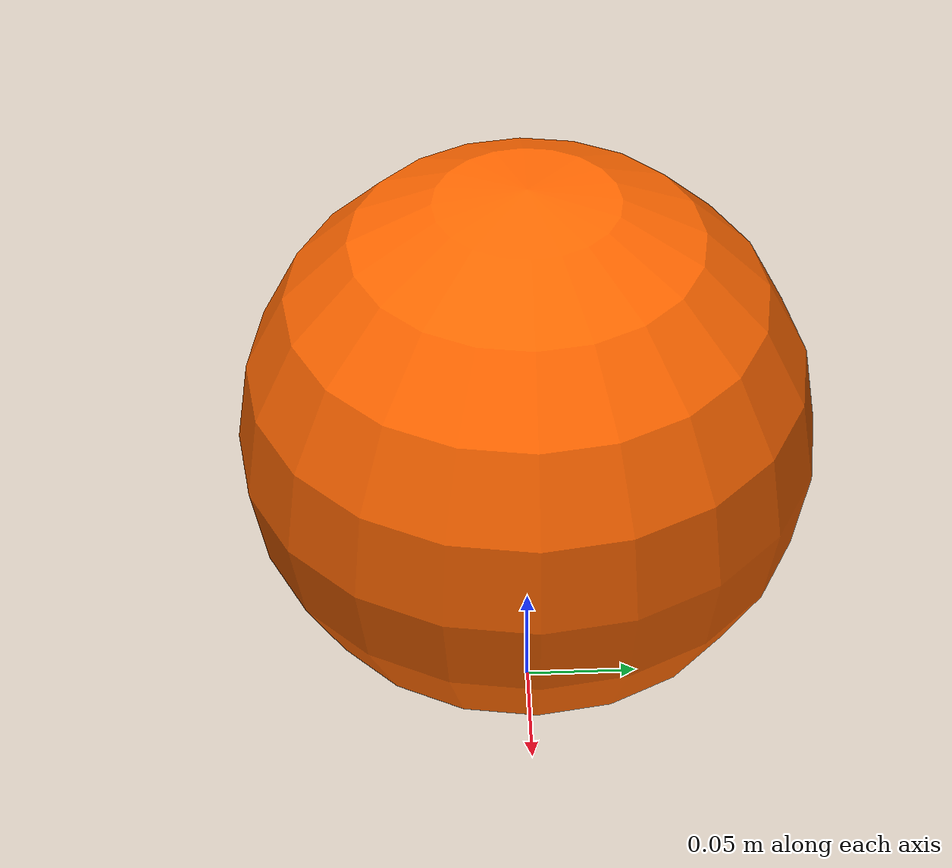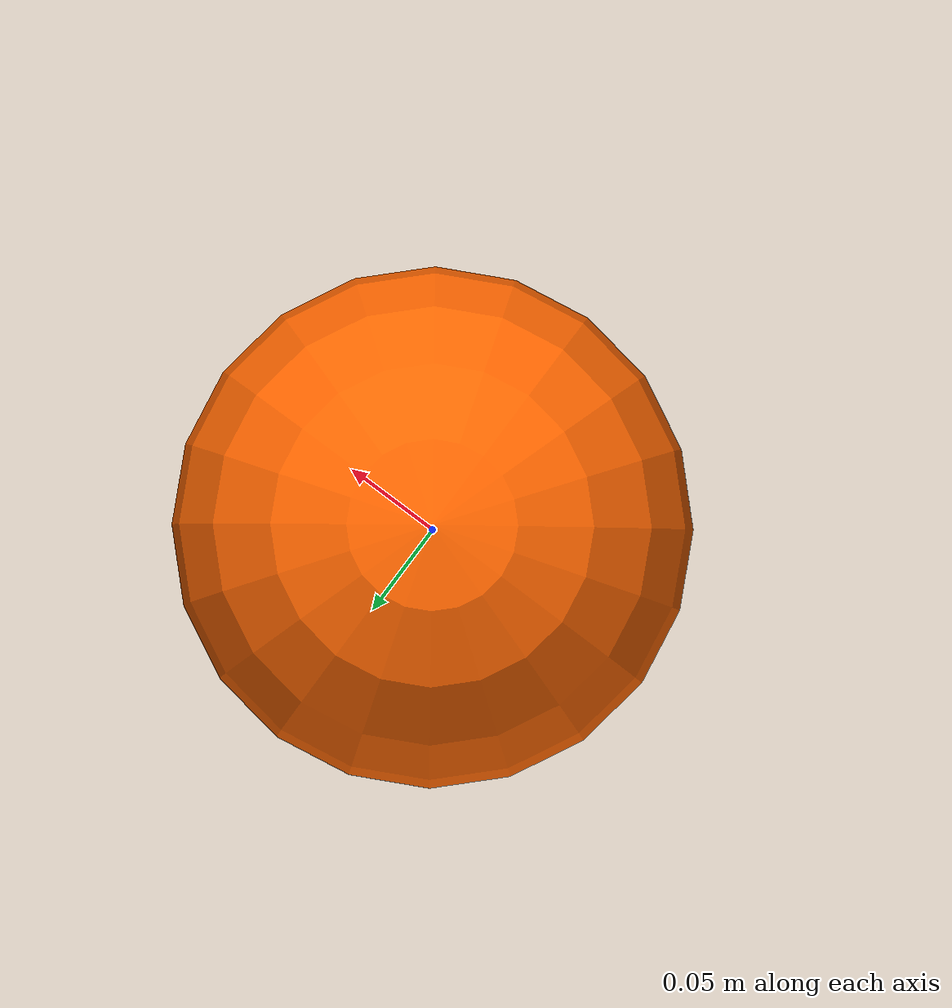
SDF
<sdf version="1.6">
  <model name="basketball">
    <pose>0 0 0.15 0 0 0</pose>

    <link name="link">

      <inertial>
        <mass>0.6</mass>
      </inertial>

      <collision name="collision">
        <geometry>
          <sphere>
            <radius>0.12</radius>
          </sphere>
        </geometry>
      </collision>

      <visual name="visual">
        <geometry>
          <sphere>
            <radius>0.12</radius>
          </sphere>
        </geometry>

        <material>
          <ambient>1 0.4 0 1</ambient>
          <diffuse>1 0.4 0 1</diffuse>
        </material>

      </visual>

    </link>
  </model>
</sdf>
